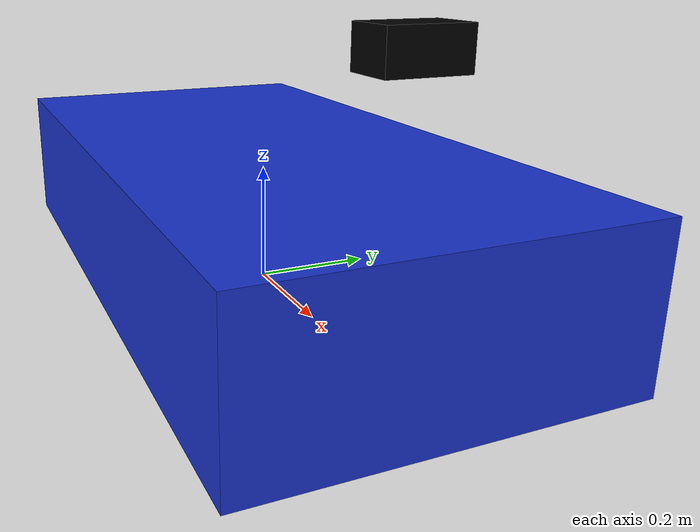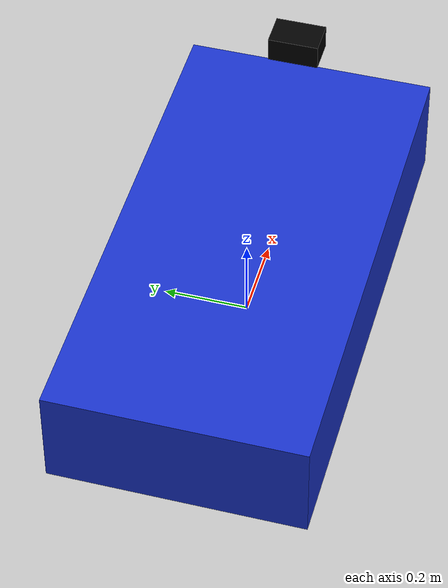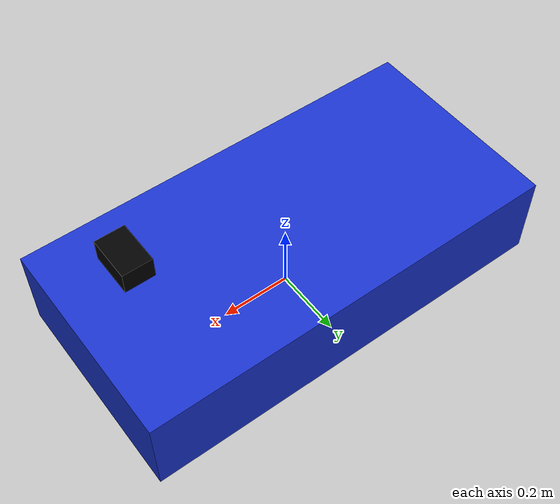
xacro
<?xml version="1.0"?>
<robot name="lane_vehicle" xmlns:xacro="http://www.ros.org/wiki/xacro">
  <xacro:property name="base_length" value="1.2" />
  <xacro:property name="base_width" value="0.6" />
  <xacro:property name="base_height" value="0.25" />
  <xacro:property name="wheel_radius" value="0.12" />
  <xacro:property name="wheel_width" value="0.06" />

  <link name="base_link">
    <visual>
      <origin xyz="0 0 ${base_height / 2.0}" rpy="0 0 0" />
      <geometry>
        <box size="${base_length} ${base_width} ${base_height}" />
      </geometry>
      <material name="blue">
        <color rgba="0.1 0.2 0.8 1.0" />
      </material>
    </visual>
    <collision>
      <origin xyz="0 0 ${base_height / 2.0}" rpy="0 0 0" />
      <geometry>
        <box size="${base_length} ${base_width} ${base_height}" />
      </geometry>
    </collision>
    <inertial>
      <origin xyz="0 0 ${base_height / 2.0}" rpy="0 0 0" />
      <mass value="15.0" />
      <inertia ixx="0.6" ixy="0.0" ixz="0.0" iyy="1.8" iyz="0.0" izz="2.0" />
    </inertial>
  </link>

  <link name="camera_link">
    <visual>
      <origin xyz="0 0 0" rpy="0 0 0" />
      <geometry>
        <box size="0.08 0.12 0.06" />
      </geometry>
      <material name="black">
        <color rgba="0.0 0.0 0.0 1.0" />
      </material>
    </visual>
  </link>

  <joint name="camera_joint" type="fixed">
    <parent link="base_link" />
    <child link="camera_link" />
    <origin xyz="0.45 0 0.45" rpy="0 0 0" />
  </joint>

  <gazebo reference="camera_link">
    <sensor name="front_camera" type="camera">
      <always_on>true</always_on>
      <update_rate>30</update_rate>
      <camera>
        <horizontal_fov>1.3962634</horizontal_fov>
        <image>
          <width>640</width>
          <height>480</height>
          <format>R8G8B8</format>
        </image>
        <clip>
          <near>0.02</near>
          <far>100</far>
        </clip>
      </camera>
      <plugin name="front_camera_controller" filename="libgazebo_ros_camera.so">
        <ros>
          <namespace>/lane_vehicle</namespace>
          <remapping>image_raw:=camera/image_raw</remapping>
          <remapping>camera_info:=camera/camera_info</remapping>
        </ros>
        <camera_name>front_camera</camera_name>
        <frame_name>camera_link</frame_name>
      </plugin>
    </sensor>
  </gazebo>
</robot>
